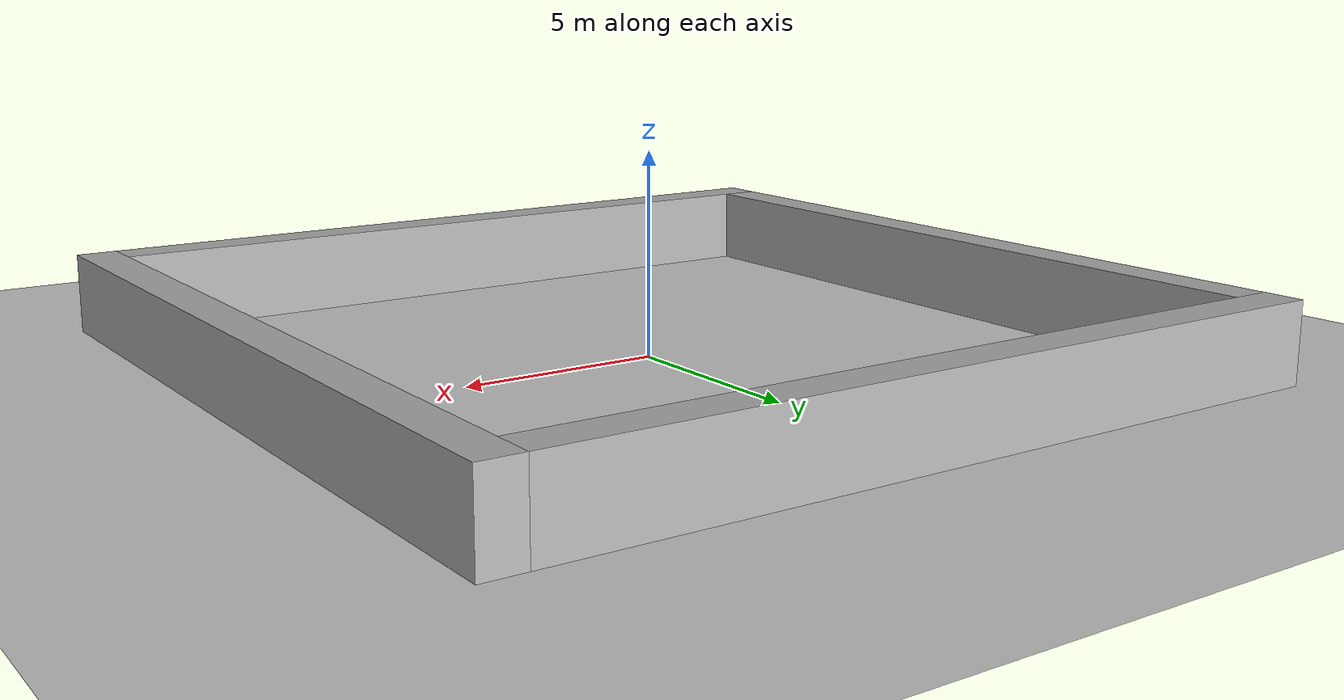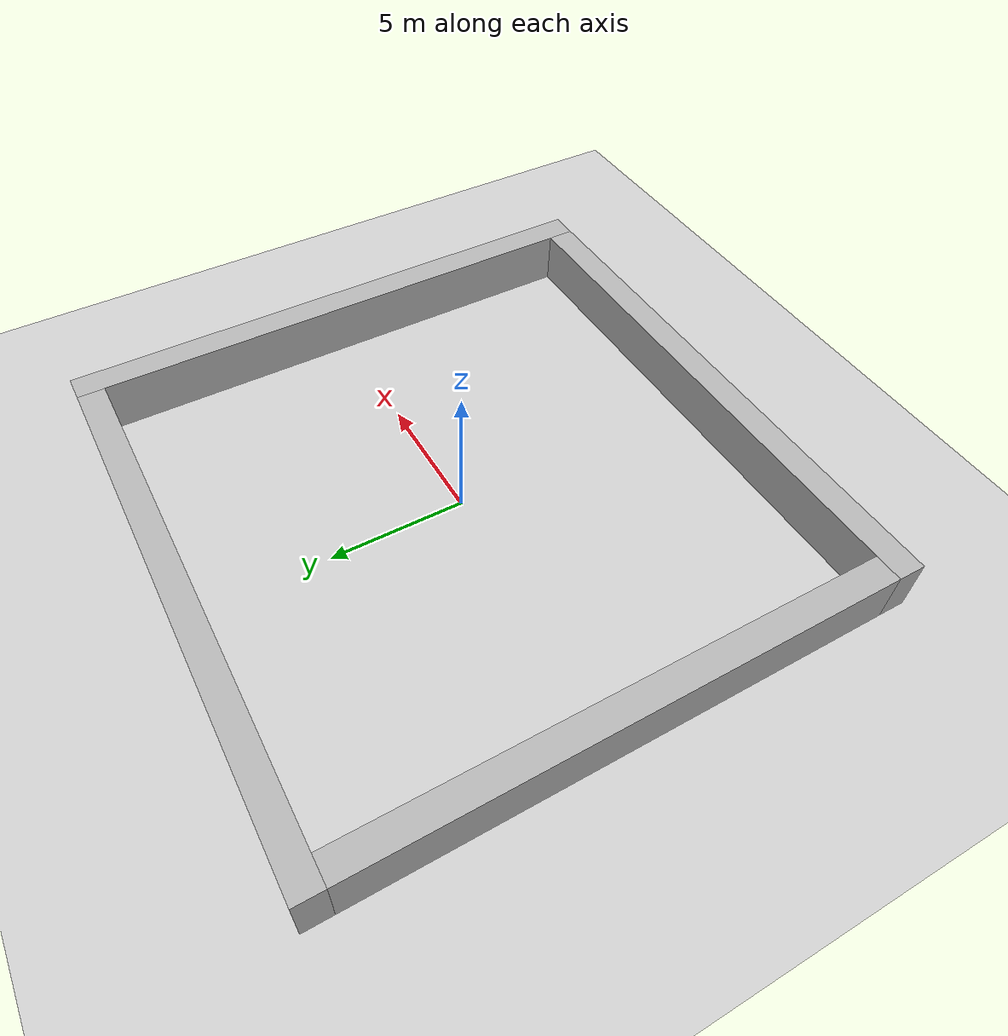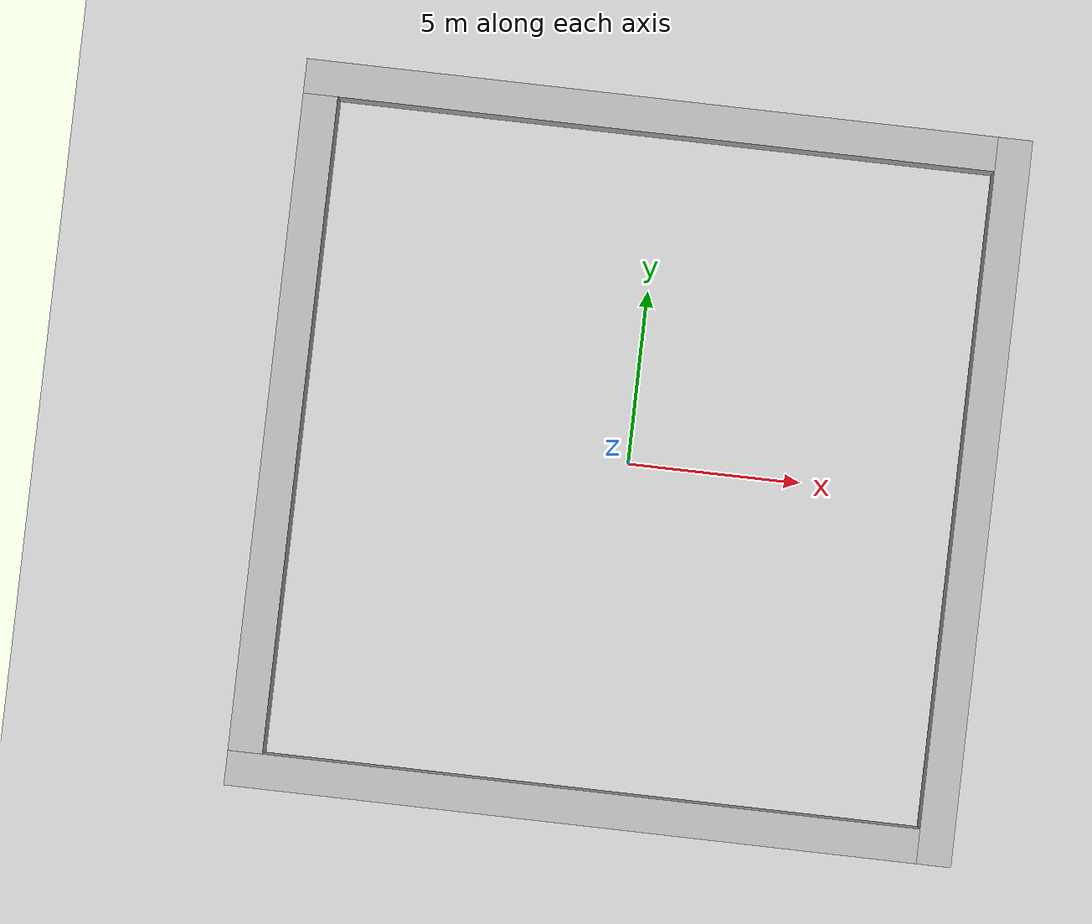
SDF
<?xml version="1.0" ?>
<sdf version="1.6">
  <world name="maze_world">
    <!-- Generated 2025-09-24T17:22:38 -->
    <include><uri>model://ground_plane</uri></include>
    <include><uri>model://sun</uri></include>

    <model name="maze">
      <static>true</static>
      <pose>0.000000 0.000000 0 0 0 7.853982</pose>
      <link name="maze_link">
      <collision name="c_0">
        <pose>0.000000 -10.000000 1.000000 0.000000 0.000000 0.000000</pose>
        <geometry><box><size>21.000000 1.000000 2.000000</size></box></geometry>
      </collision>
      <visual name="v_0">
        <pose>0.000000 -10.000000 1.000000 0.000000 0.000000 0.000000</pose>
        <geometry><box><size>21.000000 1.000000 2.000000</size></box></geometry>
        <material><ambient>0.7 0.7 0.7 1</ambient><diffuse>0.7 0.7 0.7 1</diffuse><specular>0.1 0.1 0.1 1</specular></material>
      </visual>
      <collision name="c_1">
        <pose>-10.000000 0.500000 1.000000 0.000000 0.000000 0.000000</pose>
        <geometry><box><size>1.000000 20.000000 2.000000</size></box></geometry>
      </collision>
      <visual name="v_1">
        <pose>-10.000000 0.500000 1.000000 0.000000 0.000000 0.000000</pose>
        <geometry><box><size>1.000000 20.000000 2.000000</size></box></geometry>
        <material><ambient>0.7 0.7 0.7 1</ambient><diffuse>0.7 0.7 0.7 1</diffuse><specular>0.1 0.1 0.1 1</specular></material>
      </visual>
      <collision name="c_2">
        <pose>10.000000 0.500000 1.000000 0.000000 0.000000 0.000000</pose>
        <geometry><box><size>1.000000 20.000000 2.000000</size></box></geometry>
      </collision>
      <visual name="v_2">
        <pose>10.000000 0.500000 1.000000 0.000000 0.000000 0.000000</pose>
        <geometry><box><size>1.000000 20.000000 2.000000</size></box></geometry>
        <material><ambient>0.7 0.7 0.7 1</ambient><diffuse>0.7 0.7 0.7 1</diffuse><specular>0.1 0.1 0.1 1</specular></material>
      </visual>
      <collision name="c_3">
        <pose>0.000000 10.000000 1.000000 0.000000 0.000000 0.000000</pose>
        <geometry><box><size>19.000000 1.000000 2.000000</size></box></geometry>
      </collision>
      <visual name="v_3">
        <pose>0.000000 10.000000 1.000000 0.000000 0.000000 0.000000</pose>
        <geometry><box><size>19.000000 1.000000 2.000000</size></box></geometry>
        <material><ambient>0.7 0.7 0.7 1</ambient><diffuse>0.7 0.7 0.7 1</diffuse><specular>0.1 0.1 0.1 1</specular></material>
      </visual>
      </link>
    </model>
    <plugin name="ActorPosesPlugin" filename="libActorPosesPlugin.so"></plugin>
  </world>
</sdf>
